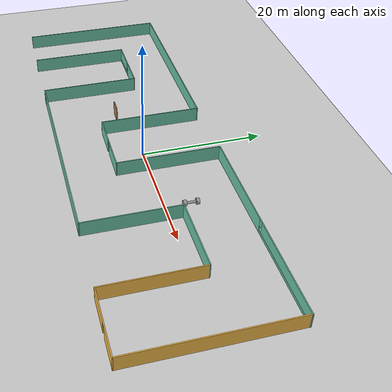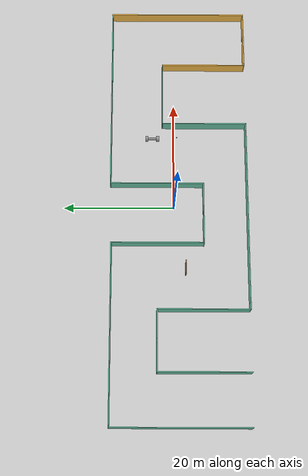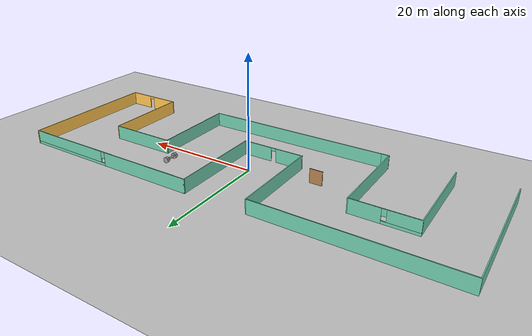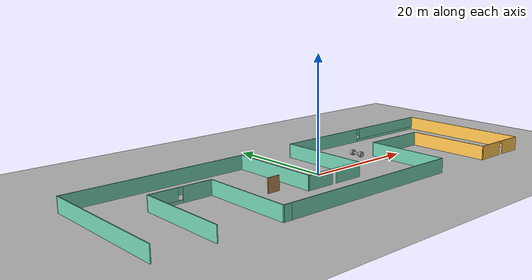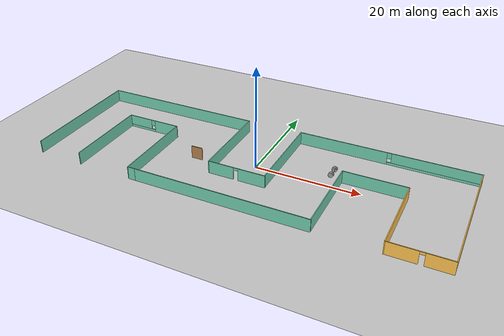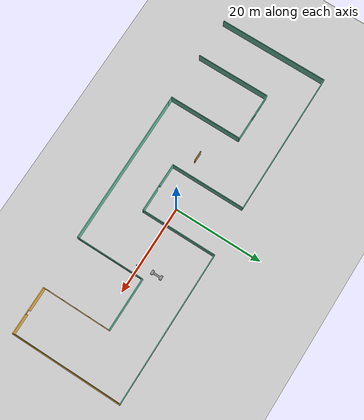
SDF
<sdf version="1.6">
 <world name="default">
  <model name="ground_plane">
   <static>1</static>
   <link name="link">
    <collision name="collision">
     <geometry><plane><normal>0 0 1</normal><size>100 100</size></plane></geometry>
     <surface><friction><ode><mu>100</mu><mu2>50</mu2></ode></friction></surface>
    </collision>
    <visual name="visual">
     <cast_shadows>0</cast_shadows>
     <geometry><plane><normal>0 0 1</normal><size>100 100</size></plane></geometry>
     <material>
      <script><uri>file://media/materials/scripts/gazebo.material</uri><name>Gazebo/Grey</name></script>
     </material>
    </visual>
   </link>
  </model>
  <model name="mybuilding">
   <pose>-0.4249 -0.78881 0 0 -0 0</pose>
   <link name="Wall_10">
    <collision name="Wall_10_Collision">
     <geometry><box><size>15.5 0.15 2.5</size></box></geometry>
     <pose>0 0 1.25 0 -0 0</pose>
    </collision>
    <visual name="Wall_10_Visual">
     <pose>0 0 1.25 0 -0 0</pose>
     <geometry><box><size>15.5 0.15 2.5</size></box></geometry>
     <material>
      <script><uri>file://media/materials/scripts/gazebo.material</uri><name>Gazebo/Grey</name></script>
      <ambient>1 0.764706 0.305882 1</ambient>
     </material>
    </visual>
    <pose>28.0301 -4.75 0 0 -0 1.5708</pose>
   </link>
   <link name="Wall_11">
    <collision name="Wall_11_Collision">
     <geometry><box><size>12 0.15 2.5</size></box></geometry>
     <pose>0 0 1.25 0 -0 0</pose>
    </collision>
    <visual name="Wall_11_Visual">
     <pose>0 0 1.25 0 -0 0</pose>
     <geometry><box><size>12 0.15 2.5</size></box></geometry>
     <material>
      <script><uri>file://media/materials/scripts/gazebo.material</uri><name>Gazebo/Grey</name></script>
      <ambient>0.435294 0.796078 0.67451 1</ambient>
     </material>
    </visual>
    <pose>22.1051 2.925 0 0 -0 3.14159</pose>
   </link>
   <link name="Wall_12">
    <collision name="Wall_12_Collision">
     <geometry><box><size>15.5 0.15 2.5</size></box></geometry>
     <pose>0 0 1.25 0 -0 0</pose>
    </collision>
    <visual name="Wall_12_Visual">
     <pose>0 0 1.25 0 -0 0</pose>
     <geometry><box><size>15.5 0.15 2.5</size></box></geometry>
     <material>
      <script><uri>file://media/materials/scripts/gazebo.material</uri><name>Gazebo/Grey</name></script>
      <ambient>0.435294 0.796078 0.67451 1</ambient>
     </material>
    </visual>
    <pose>16.1801 -4.75 0 0 0 -1.5708</pose>
   </link>
   <link name="Wall_14">
    <collision name="Wall_14_Collision">
     <geometry><box><size>17 0.15 2.5</size></box></geometry>
     <pose>0 0 1.25 0 -0 0</pose>
    </collision>
    <visual name="Wall_14_Visual">
     <pose>0 0 1.25 0 -0 0</pose>
     <geometry><box><size>17 0.15 2.5</size></box></geometry>
     <material>
      <script><uri>file://media/materials/scripts/gazebo.material</uri><name>Gazebo/Grey</name></script>
      <ambient>0.435294 0.796078 0.67451 1</ambient>
     </material>
    </visual>
    <pose>4.55 3.9465 0 0 0 -1.5708</pose>
   </link>
   <link name="Wall_15">
    <pose>-1 -4.4785 0 0 -0 3.14159</pose>
    <visual name="Wall_15_Visual_0">
     <pose>-2.97687 0 1.25 0 -0 0</pose>
     <geometry><box><size>5.29627 0.15 2.5</size></box></geometry>
     <material>
      <script><uri>file://media/materials/scripts/gazebo.material</uri><name>Gazebo/Grey</name></script>
      <ambient>0.435294 0.796078 0.67451 1</ambient>
     </material>
    </visual>
    <collision name="Wall_15_Collision_0">
     <geometry><box><size>5.29627 0.15 2.5</size></box></geometry>
     <pose>-2.97687 0 1.25 0 -0 0</pose>
    </collision>
    <visual name="Wall_15_Visual_1">
     <pose>3.09813 0 1.25 0 -0 0</pose>
     <geometry><box><size>5.05373 0.15 2.5</size></box></geometry>
     <material>
      <script><uri>file://media/materials/scripts/gazebo.material</uri><name>Gazebo/Grey</name></script>
      <ambient>0.435294 0.796078 0.67451 1</ambient>
     </material>
    </visual>
    <collision name="Wall_15_Collision_1">
     <geometry><box><size>5.05373 0.15 2.5</size></box></geometry>
     <pose>3.09813 0 1.25 0 -0 0</pose>
    </collision>
    <visual name="Wall_15_Visual_2">
     <pose>0.121265 0 2.25 0 -0 0</pose>
     <geometry><box><size>0.9 0.15 0.5</size></box></geometry>
     <material>
      <script><uri>file://media/materials/scripts/gazebo.material</uri><name>Gazebo/Grey</name></script>
      <ambient>0.435294 0.796078 0.67451 1</ambient>
     </material>
    </visual>
    <collision name="Wall_15_Collision_2">
     <geometry><box><size>0.9 0.15 0.5</size></box></geometry>
     <pose>0.121265 0 2.25 0 -0 0</pose>
    </collision>
   </link>
   <link name="Wall_17">
    <collision name="Wall_17_Collision">
     <geometry><box><size>33.5 0.15 2.5</size></box></geometry>
     <pose>0 0 1.25 0 -0 0</pose>
    </collision>
    <visual name="Wall_17_Visual">
     <pose>0 0 1.25 0 -0 0</pose>
     <geometry><box><size>33.5 0.15 2.5</size></box></geometry>
     <material>
      <script><uri>file://media/materials/scripts/gazebo.material</uri><name>Gazebo/Grey</name></script>
      <ambient>0.435294 0.796078 0.67451 1</ambient>
     </material>
    </visual>
    <pose>-0.494871 -12.425 0 0 -0 3.14159</pose>
   </link>
   <link name="Wall_18">
    <collision name="Wall_18_Collision">
     <geometry><box><size>1.5 0.15 2.5</size></box></geometry>
     <pose>0 0 1.25 0 -0 0</pose>
    </collision>
    <visual name="Wall_18_Visual">
     <pose>0 0 1.25 0 -0 0</pose>
     <geometry><box><size>1.5 0.15 2.5</size></box></geometry>
     <material>
      <script><uri>file://media/materials/scripts/gazebo.material</uri><name>Gazebo/Grey</name></script>
      <ambient>0.435294 0.796078 0.67451 1</ambient>
     </material>
    </visual>
    <pose>-17.8449 -12.425 0 0 -0 3.14159</pose>
   </link>
   <link name="Wall_19">
    <collision name="Wall_19_Collision">
     <geometry><box><size>16.5 0.15 2.5</size></box></geometry>
     <pose>0 0 1.25 0 -0 0</pose>
    </collision>
    <visual name="Wall_19_Visual">
     <pose>0 0 1.25 0 -0 0</pose>
     <geometry><box><size>16.5 0.15 2.5</size></box></geometry>
     <material>
      <script><uri>file://media/materials/scripts/gazebo.material</uri><name>Gazebo/Grey</name></script>
      <ambient>0.435294 0.796078 0.67451 1</ambient>
     </material>
    </visual>
    <pose>-18.5199 -4.25 0 0 -0 1.5708</pose>
   </link>
   <link name="Wall_21">
    <pose>21.6 12.3715 0 0 -0 0</pose>
    <visual name="Wall_21_Visual_0">
     <pose>-8.51309 0 1.25 0 -0 0</pose>
     <geometry><box><size>17.2238 0.15 2.5</size></box></geometry>
     <material>
      <script><uri>file://media/materials/scripts/gazebo.material</uri><name>Gazebo/Grey</name></script>
      <ambient>0.435294 0.796078 0.67451 1</ambient>
     </material>
    </visual>
    <collision name="Wall_21_Collision_0">
     <geometry><box><size>17.2238 0.15 2.5</size></box></geometry>
     <pose>-8.51309 0 1.25 0 -0 0</pose>
    </collision>
    <visual name="Wall_21_Visual_1">
     <pose>8.61191 0 0.25 0 -0 0</pose>
     <geometry><box><size>17.0262 0.15 0.5</size></box></geometry>
     <material>
      <script><uri>file://media/materials/scripts/gazebo.material</uri><name>Gazebo/Grey</name></script>
      <ambient>0.435294 0.796078 0.67451 1</ambient>
     </material>
    </visual>
    <collision name="Wall_21_Collision_1">
     <geometry><box><size>17.0262 0.15 0.5</size></box></geometry>
     <pose>8.61191 0 0.25 0 -0 0</pose>
    </collision>
    <visual name="Wall_21_Visual_2">
     <pose>9.01191 0 1.5 0 -0 0</pose>
     <geometry><box><size>16.2262 0.15 2</size></box></geometry>
     <material>
      <script><uri>file://media/materials/scripts/gazebo.material</uri><name>Gazebo/Grey</name></script>
      <ambient>0.435294 0.796078 0.67451 1</ambient>
     </material>
    </visual>
    <collision name="Wall_21_Collision_2">
     <geometry><box><size>16.2262 0.15 2</size></box></geometry>
     <pose>9.01191 0 1.5 0 -0 0</pose>
    </collision>
    <visual name="Wall_21_Visual_3">
     <pose>0.498819 0 1.9 0 -0 0</pose>
     <geometry><box><size>0.8 0.15 1.2</size></box></geometry>
     <material>
      <script><uri>file://media/materials/scripts/gazebo.material</uri><name>Gazebo/Grey</name></script>
      <ambient>0.435294 0.796078 0.67451 1</ambient>
     </material>
    </visual>
    <collision name="Wall_21_Collision_3">
     <geometry><box><size>0.8 0.15 1.2</size></box></geometry>
     <pose>0.498819 0 1.9 0 -0 0</pose>
    </collision>
   </link>
   <link name="Wall_23">
    <collision name="Wall_23_Collision">
     <geometry><box><size>16.75 0.15 2.5</size></box></geometry>
     <pose>0 0 1.25 0 -0 0</pose>
    </collision>
    <visual name="Wall_23_Visual">
     <pose>0 0 1.25 0 -0 0</pose>
     <geometry><box><size>16.75 0.15 2.5</size></box></geometry>
     <material>
      <script><uri>file://media/materials/scripts/gazebo.material</uri><name>Gazebo/Grey</name></script>
      <ambient>0.435294 0.796078 0.67451 1</ambient>
     </material>
    </visual>
    <pose>-6.55 3.8215 0 0 -0 1.5708</pose>
   </link>
   <link name="Wall_24">
    <collision name="Wall_24_Collision">
     <geometry><box><size>32.25 0.15 2.5</size></box></geometry>
     <pose>0 0 1.25 0 -0 0</pose>
    </collision>
    <visual name="Wall_24_Visual">
     <pose>0 0 1.25 0 -0 0</pose>
     <geometry><box><size>32.25 0.15 2.5</size></box></geometry>
     <material>
      <script><uri>file://media/materials/scripts/gazebo.material</uri><name>Gazebo/Grey</name></script>
      <ambient>0.435294 0.796078 0.67451 1</ambient>
     </material>
    </visual>
    <pose>-22.6 12.1215 0 0 -0 3.14159</pose>
   </link>
   <link name="Wall_25">
    <collision name="Wall_25_Collision">
     <geometry><box><size>24.5 0.15 2.5</size></box></geometry>
     <pose>0 0 1.25 0 -0 0</pose>
    </collision>
    <visual name="Wall_25_Visual">
     <pose>0 0 1.25 0 -0 0</pose>
     <geometry><box><size>24.5 0.15 2.5</size></box></geometry>
     <material>
      <script><uri>file://media/materials/scripts/gazebo.material</uri><name>Gazebo/Grey</name></script>
      <ambient>0.435294 0.796078 0.67451 1</ambient>
     </material>
    </visual>
    <pose>-38.65 -0.053502 0 0 0 -1.5708</pose>
   </link>
   <link name="Wall_27">
    <pose>-23.9449 3.925 0 0 -0 3.14159</pose>
    <visual name="Wall_27_Visual_0">
     <pose>-2.91227 0 1.25 0 -0 0</pose>
     <geometry><box><size>5.17546 0.15 2.5</size></box></geometry>
     <material>
      <script><uri>file://media/materials/scripts/gazebo.material</uri><name>Gazebo/Grey</name></script>
      <ambient>0.435294 0.796078 0.67451 1</ambient>
     </material>
    </visual>
    <collision name="Wall_27_Collision_0">
     <geometry><box><size>5.17546 0.15 2.5</size></box></geometry>
     <pose>-2.91227 0 1.25 0 -0 0</pose>
    </collision>
    <visual name="Wall_27_Visual_1">
     <pose>2.58773 0 0.25 0 -0 0</pose>
     <geometry><box><size>5.82454 0.15 0.5</size></box></geometry>
     <material>
      <script><uri>file://media/materials/scripts/gazebo.material</uri><name>Gazebo/Grey</name></script>
      <ambient>0.435294 0.796078 0.67451 1</ambient>
     </material>
    </visual>
    <collision name="Wall_27_Collision_1">
     <geometry><box><size>5.82454 0.15 0.5</size></box></geometry>
     <pose>2.58773 0 0.25 0 -0 0</pose>
    </collision>
    <visual name="Wall_27_Visual_2">
     <pose>2.98773 0 1.5 0 -0 0</pose>
     <geometry><box><size>5.02454 0.15 2</size></box></geometry>
     <material>
      <script><uri>file://media/materials/scripts/gazebo.material</uri><name>Gazebo/Grey</name></script>
      <ambient>0.435294 0.796078 0.67451 1</ambient>
     </material>
    </visual>
    <collision name="Wall_27_Collision_2">
     <geometry><box><size>5.02454 0.15 2</size></box></geometry>
     <pose>2.98773 0 1.5 0 -0 0</pose>
    </collision>
    <visual name="Wall_27_Visual_3">
     <pose>0.075464 0 1.9 0 -0 0</pose>
     <geometry><box><size>0.8 0.15 1.2</size></box></geometry>
     <material>
      <script><uri>file://media/materials/scripts/gazebo.material</uri><name>Gazebo/Grey</name></script>
      <ambient>0.435294 0.796078 0.67451 1</ambient>
     </material>
    </visual>
    <collision name="Wall_27_Collision_3">
     <geometry><box><size>0.8 0.15 1.2</size></box></geometry>
     <pose>0.075464 0 1.9 0 -0 0</pose>
    </collision>
   </link>
   <link name="Wall_28">
    <collision name="Wall_28_Collision">
     <geometry><box><size>16.5 0.15 2.5</size></box></geometry>
     <pose>0 0 1.25 0 -0 0</pose>
    </collision>
    <visual name="Wall_28_Visual">
     <pose>0 0 1.25 0 -0 0</pose>
     <geometry><box><size>16.5 0.15 2.5</size></box></geometry>
     <material>
      <script><uri>file://media/materials/scripts/gazebo.material</uri><name>Gazebo/Grey</name></script>
      <ambient>0.435294 0.796078 0.67451 1</ambient>
     </material>
    </visual>
    <pose>-29.3699 -4.25 0 0 0 -1.5708</pose>
   </link>
   <link name="Wall_8">
    <collision name="Wall_8_Collision">
     <geometry><box><size>25 0.15 2.5</size></box></geometry>
     <pose>0 0 1.25 0 -0 0</pose>
    </collision>
    <visual name="Wall_8_Visual">
     <pose>0 0 1.25 0 -0 0</pose>
     <geometry><box><size>25 0.15 2.5</size></box></geometry>
     <material>
      <script><uri>file://media/materials/scripts/gazebo.material</uri><name>Gazebo/Grey</name></script>
      <ambient>1 0.764706 0.305882 1</ambient>
     </material>
    </visual>
    <pose>38.6301 0 0 0 0 -1.5708</pose>
   </link>
   <link name="Wall_9">
    <pose>33.3301 -12.425 0 0 -0 3.14159</pose>
    <visual name="Wall_9_Visual_0">
     <pose>-3.10187 0 1.25 0 -0 0</pose>
     <geometry><box><size>4.54627 0.15 2.5</size></box></geometry>
     <material>
      <script><uri>file://media/materials/scripts/gazebo.material</uri><name>Gazebo/Grey</name></script>
      <ambient>1 0.764706 0.305882 1</ambient>
     </material>
    </visual>
    <collision name="Wall_9_Collision_0">
     <geometry><box><size>4.54627 0.15 2.5</size></box></geometry>
     <pose>-3.10187 0 1.25 0 -0 0</pose>
    </collision>
    <visual name="Wall_9_Visual_1">
     <pose>2.72313 0 1.25 0 -0 0</pose>
     <geometry><box><size>5.30373 0.15 2.5</size></box></geometry>
     <material>
      <script><uri>file://media/materials/scripts/gazebo.material</uri><name>Gazebo/Grey</name></script>
      <ambient>1 0.764706 0.305882 1</ambient>
     </material>
    </visual>
    <collision name="Wall_9_Collision_1">
     <geometry><box><size>5.30373 0.15 2.5</size></box></geometry>
     <pose>2.72313 0 1.25 0 -0 0</pose>
    </collision>
    <visual name="Wall_9_Visual_2">
     <pose>-0.378735 0 2.25 0 -0 0</pose>
     <geometry><box><size>0.9 0.15 0.5</size></box></geometry>
     <material>
      <script><uri>file://media/materials/scripts/gazebo.material</uri><name>Gazebo/Grey</name></script>
      <ambient>1 0.764706 0.305882 1</ambient>
     </material>
    </visual>
    <collision name="Wall_9_Collision_2">
     <geometry><box><size>0.9 0.15 0.5</size></box></geometry>
     <pose>-0.378735 0 2.25 0 -0 0</pose>
    </collision>
   </link>
   <static>1</static>
  </model>
  <model name="mybuilding2">
   <pose>-11.3 -2.03 0 0 -0 0</pose>
   <link name="Wall_14">
    <collision name="Wall_14_Collision">
     <geometry><box><size>2.25 0.15 2.5</size></box></geometry>
     <pose>0 0 1.25 0 -0 0</pose>
    </collision>
    <visual name="Wall_14_Visual">
     <pose>0 0 1.25 0 -0 0</pose>
     <geometry><box><size>2.25 0.15 2.5</size></box></geometry>
     <material>
      <script><uri>file://media/materials/scripts/gazebo.material</uri><name>Gazebo/Wood</name></script>
      <ambient>1 1 1 1</ambient>
     </material>
    </visual>
   </link>
   <static>1</static>
  </model>
  <model name="mymodel2">
   <link name="link_14">
    <pose>0 0 0 1.5707 -0 0</pose>
    <inertial>
     <mass>1</mass>
     <inertia><ixx>0.145833</ixx><ixy>0</ixy><ixz>0</ixz><iyy>0.145833</iyy><iyz>0</iyz><izz>0.125</izz></inertia>
    </inertial>
    <visual name="visual">
     <geometry><cylinder><radius>0.2</radius><length>1.5</length></cylinder></geometry>
     <material>
      <lighting>1</lighting>
      <script><uri>file://media/materials/scripts/gazebo.material</uri><name>Gazebo/Grey</name></script>
      <ambient>0.3 0.3 0.3 1</ambient>
      <diffuse>0.7 0.7 0.7 1</diffuse>
      <specular>0.01 0.01 0.01 1</specular>
      <emissive>0 0 0 1</emissive>
      <shader type="vertex"><normal_map>__default__</normal_map></shader>
     </material>
    </visual>
    <collision name="collision">
     <geometry><cylinder><radius>0.2</radius><length>1.5</length></cylinder></geometry>
     <surface>
      <friction>
       <ode><mu>1</mu><mu2>1</mu2><fdir1>0 0 0</fdir1><slip1>0</slip1><slip2>0</slip2></ode>
       <torsional>
        <coefficient>1</coefficient>
        <patch_radius>0</patch_radius>
        <surface_radius>0</surface_radius>
        <use_patch_radius>1</use_patch_radius>
        <ode><slip>0</slip></ode>
       </torsional>
      </friction>
      <bounce><restitution_coefficient>0</restitution_coefficient><threshold>1e+06</threshold></bounce>
      <contact>
       <collide_without_contact>0</collide_without_contact>
       <collide_without_contact_bitmask>1</collide_without_contact_bitmask>
       <collide_bitmask>1</collide_bitmask>
       <ode>
        <soft_cfm>0</soft_cfm>
        <soft_erp>0.2</soft_erp>
        <kp>1e+13</kp>
        <kd>1</kd>
        <max_vel>0.01</max_vel>
        <min_depth>0</min_depth>
       </ode>
       <bullet>
        <split_impulse>1</split_impulse>
        <split_impulse_penetration_threshold>-0.01</split_impulse_penetration_threshold>
        <soft_cfm>0</soft_cfm>
        <soft_erp>0.2</soft_erp>
        <kp>1e+13</kp>
        <kd>1</kd>
       </bullet>
      </contact>
     </surface>
    </collision>
   </link>
   <link name="link_15">
    <pose>0 1.00007 0 1.5707 -0 0</pose>
    <inertial>
     <mass>1</mass>
     <inertia><ixx>0.145833</ixx><ixy>0</ixy><ixz>0</ixz><iyy>0.145833</iyy><iyz>0</iyz><izz>0.125</izz></inertia>
    </inertial>
    <visual name="visual">
     <geometry><cylinder><radius>0.5</radius><length>0.5</length></cylinder></geometry>
     <material>
      <lighting>1</lighting>
      <script><uri>file://media/materials/scripts/gazebo.material</uri><name>Gazebo/Grey</name></script>
      <ambient>0.3 0.3 0.3 1</ambient>
      <diffuse>0.7 0.7 0.7 1</diffuse>
      <specular>0.01 0.01 0.01 1</specular>
      <emissive>0 0 0 1</emissive>
      <shader type="vertex"><normal_map>__default__</normal_map></shader>
     </material>
    </visual>
    <collision name="collision">
     <geometry><cylinder><radius>0.5</radius><length>0.5</length></cylinder></geometry>
     <surface>
      <friction>
       <ode><mu>1</mu><mu2>1</mu2><fdir1>0 0 0</fdir1><slip1>0</slip1><slip2>0</slip2></ode>
       <torsional>
        <coefficient>1</coefficient>
        <patch_radius>0</patch_radius>
        <surface_radius>0</surface_radius>
        <use_patch_radius>1</use_patch_radius>
        <ode><slip>0</slip></ode>
       </torsional>
      </friction>
      <bounce><restitution_coefficient>0</restitution_coefficient><threshold>1e+06</threshold></bounce>
      <contact>
       <collide_without_contact>0</collide_without_contact>
       <collide_without_contact_bitmask>1</collide_without_contact_bitmask>
       <collide_bitmask>1</collide_bitmask>
       <ode>
        <soft_cfm>0</soft_cfm>
        <soft_erp>0.2</soft_erp>
        <kp>1e+13</kp>
        <kd>1</kd>
        <max_vel>0.01</max_vel>
        <min_depth>0</min_depth>
       </ode>
       <bullet>
        <split_impulse>1</split_impulse>
        <split_impulse_penetration_threshold>-0.01</split_impulse_penetration_threshold>
        <soft_cfm>0</soft_cfm>
        <soft_erp>0.2</soft_erp>
        <kp>1e+13</kp>
        <kd>1</kd>
       </bullet>
      </contact>
     </surface>
    </collision>
   </link>
   <link name="link_15_clone">
    <pose>0 -1.00007 0 1.5707 -0 0</pose>
    <inertial>
     <mass>1</mass>
     <inertia><ixx>0.145833</ixx><ixy>0</ixy><ixz>0</ixz><iyy>0.145833</iyy><iyz>0</iyz><izz>0.125</izz></inertia>
    </inertial>
    <visual name="visual">
     <geometry><cylinder><radius>0.5</radius><length>0.5</length></cylinder></geometry>
     <material>
      <lighting>1</lighting>
      <script><uri>file://media/materials/scripts/gazebo.material</uri><name>Gazebo/Grey</name></script>
      <ambient>0.3 0.3 0.3 1</ambient>
      <diffuse>0.7 0.7 0.7 1</diffuse>
      <specular>0.01 0.01 0.01 1</specular>
      <emissive>0 0 0 1</emissive>
      <shader type="vertex"><normal_map>__default__</normal_map></shader>
     </material>
    </visual>
    <collision name="collision">
     <geometry><cylinder><radius>0.5</radius><length>0.5</length></cylinder></geometry>
     <surface>
      <friction>
       <ode><mu>1</mu><mu2>1</mu2><fdir1>0 0 0</fdir1><slip1>0</slip1><slip2>0</slip2></ode>
       <torsional>
        <coefficient>1</coefficient>
        <patch_radius>0</patch_radius>
        <surface_radius>0</surface_radius>
        <use_patch_radius>1</use_patch_radius>
        <ode><slip>0</slip></ode>
       </torsional>
      </friction>
      <bounce><restitution_coefficient>0</restitution_coefficient><threshold>1e+06</threshold></bounce>
      <contact>
       <collide_without_contact>0</collide_without_contact>
       <collide_without_contact_bitmask>1</collide_without_contact_bitmask>
       <collide_bitmask>1</collide_bitmask>
       <ode>
        <soft_cfm>0</soft_cfm>
        <soft_erp>0.2</soft_erp>
        <kp>1e+13</kp>
        <kd>1</kd>
        <max_vel>0.01</max_vel>
        <min_depth>0</min_depth>
       </ode>
       <bullet>
        <split_impulse>1</split_impulse>
        <split_impulse_penetration_threshold>-0.01</split_impulse_penetration_threshold>
        <soft_cfm>0</soft_cfm>
        <soft_erp>0.2</soft_erp>
        <kp>1e+13</kp>
        <kd>1</kd>
       </bullet>
      </contact>
     </surface>
    </collision>
   </link>
   <joint name="link_14_JOINT_12" type="revolute">
    <parent>link_14</parent>
    <child>link_15_clone</child>
    <axis>
     <xyz>1 0 0</xyz>
     <use_parent_model_frame>0</use_parent_model_frame>
     <limit>
      <lower>-1.79769e+308</lower>
      <upper>1.79769e+308</upper>
      <effort>-1</effort>
      <velocity>-1</velocity>
     </limit>
     <dynamics>
      <spring_reference>0</spring_reference>
      <spring_stiffness>0</spring_stiffness>
      <damping>0</damping>
     </dynamics>
    </axis>
    <physics>
     <ode><limit><cfm>0</cfm><erp>0.2</erp></limit><suspension><cfm>0</cfm><erp>0.2</erp></suspension></ode>
    </physics>
   </joint>
   <joint name="link_14_JOINT_13" type="revolute">
    <parent>link_14</parent>
    <child>link_15</child>
    <axis>
     <xyz>1 0 0</xyz>
     <use_parent_model_frame>0</use_parent_model_frame>
     <limit>
      <lower>-1.79769e+308</lower>
      <upper>1.79769e+308</upper>
      <effort>-1</effort>
      <velocity>-1</velocity>
     </limit>
     <dynamics>
      <spring_reference>0</spring_reference>
      <spring_stiffness>0</spring_stiffness>
      <damping>0</damping>
     </dynamics>
    </axis>
    <physics>
     <ode><limit><cfm>0</cfm><erp>0.2</erp></limit><suspension><cfm>0</cfm><erp>0.2</erp></suspension></ode>
    </physics>
   </joint>
   <static>0</static>
   <pose>13.4642 3.99995 0.5 0 -0 0</pose>
  </model>
  <model name="my_ball">
   <link name="link">
    <inertial>
     <mass>1</mass>
     <inertia><ixx>0.1</ixx><ixy>0</ixy><ixz>0</ixz><iyy>0.1</iyy><iyz>0</iyz><izz>0.1</izz></inertia>
    </inertial>
    <visual name="visual">
     <geometry><sphere><radius>0.1</radius></sphere></geometry>
     <material>
      <script><name>Gazebo/Grey</name><uri>file://media/materials/scripts/gazebo.material</uri></script>
      <ambient>1 1 1 1</ambient>
      <diffuse>1 1 1 1</diffuse>
      <specular>1 1 1 1</specular>
      <emissive>1 1 1 1</emissive>
      <shader type="vertex"><normal_map>__default__</normal_map></shader>
     </material>
    </visual>
    <collision name="collision">
     <geometry><sphere><radius>0.1</radius></sphere></geometry>
     <surface>
      <friction>
       <ode><mu>1</mu><mu2>1</mu2><fdir1>0 0 0</fdir1><slip1>0</slip1><slip2>0</slip2></ode>
       <torsional>
        <coefficient>1</coefficient>
        <patch_radius>0</patch_radius>
        <surface_radius>0</surface_radius>
        <use_patch_radius>1</use_patch_radius>
        <ode><slip>0</slip></ode>
       </torsional>
      </friction>
      <bounce><restitution_coefficient>0</restitution_coefficient><threshold>1e+06</threshold></bounce>
      <contact>
       <collide_without_contact>0</collide_without_contact>
       <collide_without_contact_bitmask>1</collide_without_contact_bitmask>
       <collide_bitmask>1</collide_bitmask>
       <ode>
        <soft_cfm>0</soft_cfm>
        <soft_erp>0.2</soft_erp>
        <kp>1e+13</kp>
        <kd>1</kd>
        <max_vel>0.01</max_vel>
        <min_depth>0</min_depth>
       </ode>
       <bullet>
        <split_impulse>1</split_impulse>
        <split_impulse_penetration_threshold>-0.01</split_impulse_penetration_threshold>
        <soft_cfm>0</soft_cfm>
        <soft_erp>0.2</soft_erp>
        <kp>1e+13</kp>
        <kd>1</kd>
       </bullet>
      </contact>
     </surface>
    </collision>
   </link>
   <static>0</static>
   <pose>13.9083 -0.546741 0.1 0 -0 0</pose>
  </model>
 </world>
</sdf>
